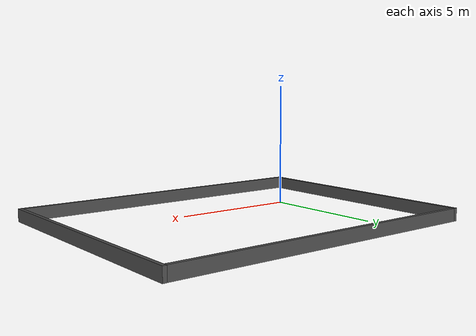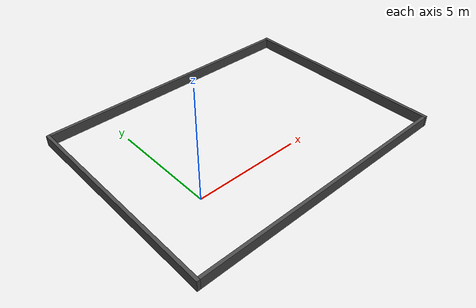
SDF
<?xml version='1.0'?>
<sdf version='1.6'>
  <model name='parede'>
    <!--inicio da primeira parede-->
    <pose frame=''>3.8355 1.905 0 0 -0 0</pose>
    <link name='Wall_0'>
      <collision name='Wall_0_Collision'>
        <geometry>
          <box>
            <size>12.85 0.15 0.5</size>
          </box>
        </geometry>
        <pose frame=''>0 0 0.25 0 -0 0</pose>
      </collision>
      <visual name='Wall_0_Visual'>
        <pose frame=''>0 0 0.25 0 -0 0</pose>
        <geometry>
          <box>
            <size>12.85 0.15 0.5</size>
          </box>
        </geometry>
        <material>
          <script>
            <uri>file://media/materials/scripts/gazebo.material</uri>
            <name>Gazebo/DarkGrey</name>
          </script>
          <ambient>0.5 0.5 0.5 1</ambient>
        </material>
        <meta>
          <layer>0</layer>
        </meta>
      </visual>
      <pose frame=''>0 -5 0 0 0 0</pose>
    </link>
    <!--fim da primeira parede-->
    <!--inicio da 2 parede -->
    <link name='Wall_1'>
      <collision name='Wall_1_Collision'>
        <geometry>
          <box>
            <size>12.85 0.15 0.5</size>
          </box>
        </geometry>
        <pose frame=''>0 0 0.25 0 -0 0</pose>
      </collision>
      <visual name='Wall_1_Visual'>
        <pose frame=''>0 0 0.25 0 -0 0</pose>
        <geometry>
          <box>
            <size>12.85 0.15 0.5</size>
          </box>
        </geometry>
        <material>
          <script>
            <uri>file://media/materials/scripts/gazebo.material</uri>
            <name>Gazebo/DarkGrey</name>
          </script>
          <ambient>0.5 0.5 0.5 1</ambient>
        </material>
        <meta>
          <layer>0</layer>
        </meta>
      </visual>
      <pose frame=''>0 5 0 0 0 3.14</pose>
    </link>
    <!--fim da 2 parede-->
    <!--inicio da 3 parede -->
    <link name='Wall_2'>
      <collision name='Wall_2_Collision'>
        <geometry>
          <box>
            <size>10.15 0.15 0.5</size>
          </box>
        </geometry>
        <pose frame=''>0 0 0.25 0 -0 0</pose>
      </collision>
      <visual name='Wall_2_Visual'>
        <pose frame=''>0 0 0.25 0 -0 0</pose>
        <geometry>
          <box>
            <size>10.15 0.15 0.5</size>
          </box>
        </geometry>
        <material>
          <script>
            <uri>file://media/materials/scripts/gazebo.material</uri>
            <name>Gazebo/DarkGrey</name>
          </script>
          <ambient>0.5 0.5 0.5 1</ambient>
        </material>
        <meta>
          <layer>0</layer>
        </meta>
      </visual>
      <pose frame=''>6.5 0 0 0 0 1.57</pose>
    </link>
    <!--fim da 3 parede-->
    <!--inicio da 4 parede -->
    <link name='Wall_3'>
      <collision name='Wall_3_Collision'>
        <geometry>
          <box>
            <size>10.15 0.15 0.5</size>
          </box>
        </geometry>
        <pose frame=''>0 0 0.25 0 -0 0</pose>
      </collision>
      <visual name='Wall_3_Visual'>
        <pose frame=''>0 0 0.25 0 -0 0</pose>
        <geometry>
          <box>
            <size>10.15 0.15 0.5</size>
          </box>
        </geometry>
        <material>
          <script>
            <uri>file://media/materials/scripts/gazebo.material</uri>
            <name>Gazebo/DarkGrey</name>
          </script>
          <ambient>0.5 0.5 0.5 1</ambient>
        </material>
        <meta>
          <layer>0</layer>
        </meta>
      </visual>
      <pose frame=''>-6.5 0 0 0 0 -1.57</pose>
    </link>
    <!--fim da 4 parede-->

    <static>1</static>
  </model>
</sdf>
